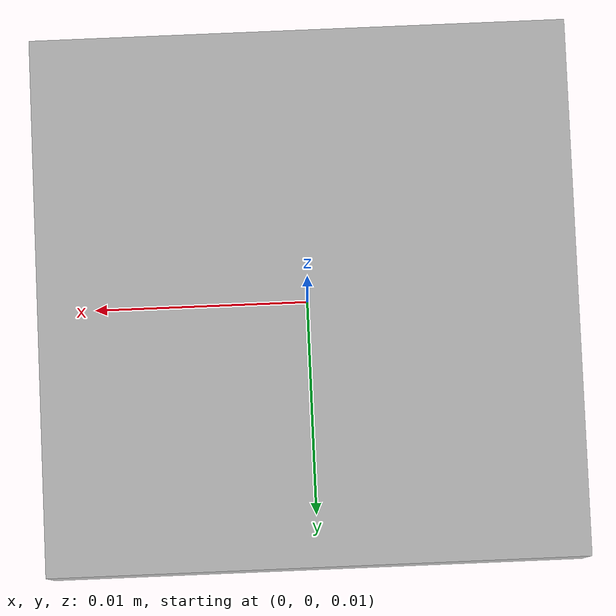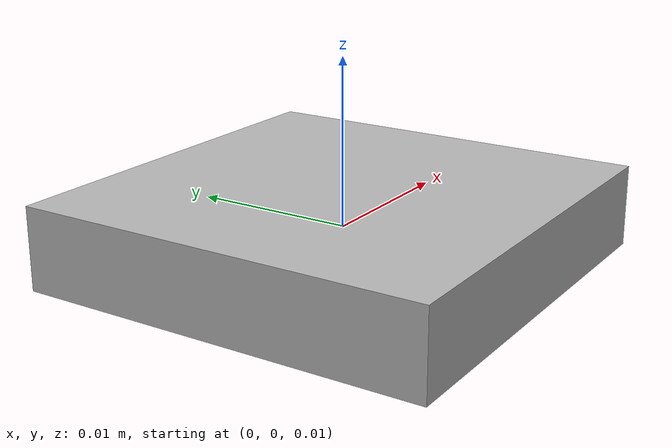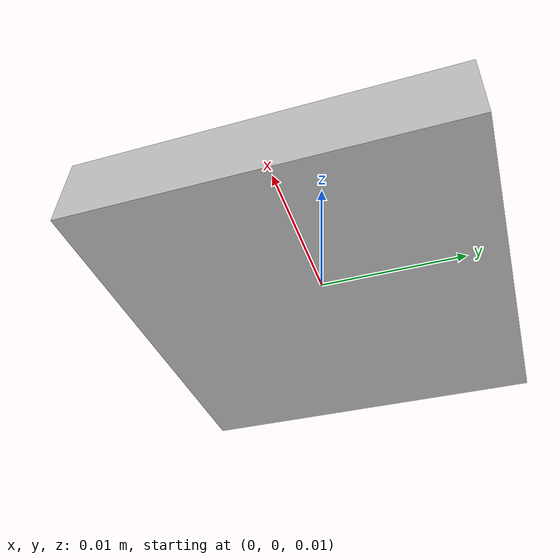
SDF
<?xml version="1.0" ?>
        <sdf version="1.5">
        <model name="DICT_4X4_50_s25_id47">
              <link name="Main">
                <pose>0 0 0 0 0 -1.570796327</pose>
                    <visual name="DICT_4X4_50_s25_id47_Visual">
                        <pose>0 0 0.01 0 0 0</pose>
                        <geometry>
                            <mesh>
                                <scale>1 1 1</scale>
                                <uri>DICT_4X4_50_s25_id47.obj</uri>
                            </mesh>
                        </geometry>
                    </visual>
                    <gravity>1</gravity>
                    <velocity_decay/>
                    <self_collide>0</self_collide>
              </link>
          </model></sdf>
